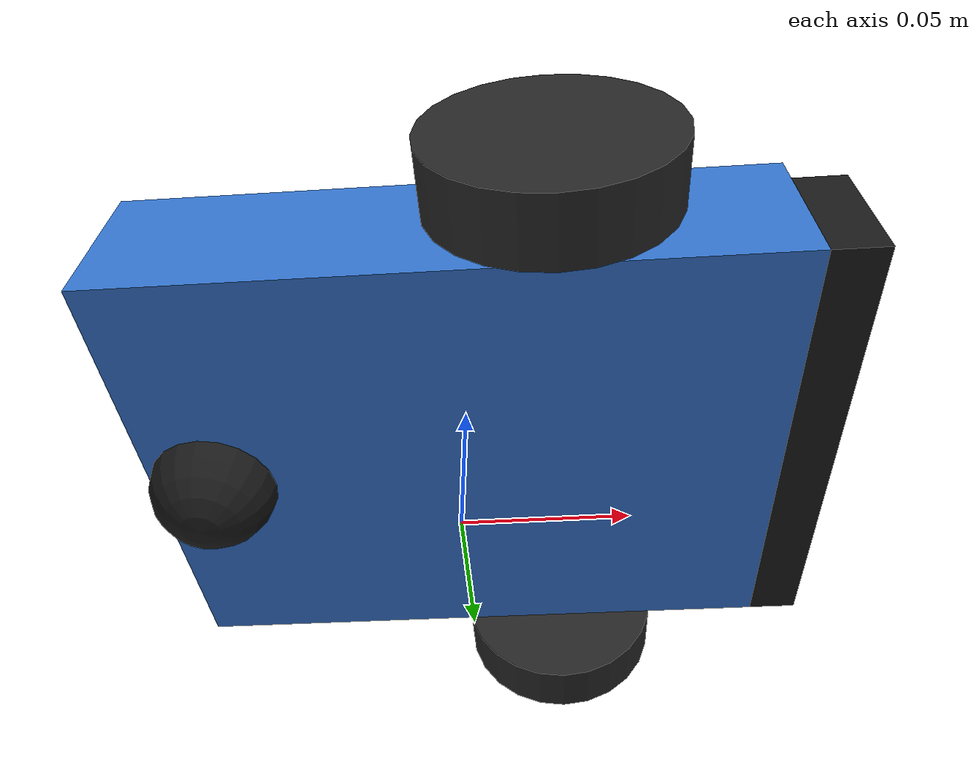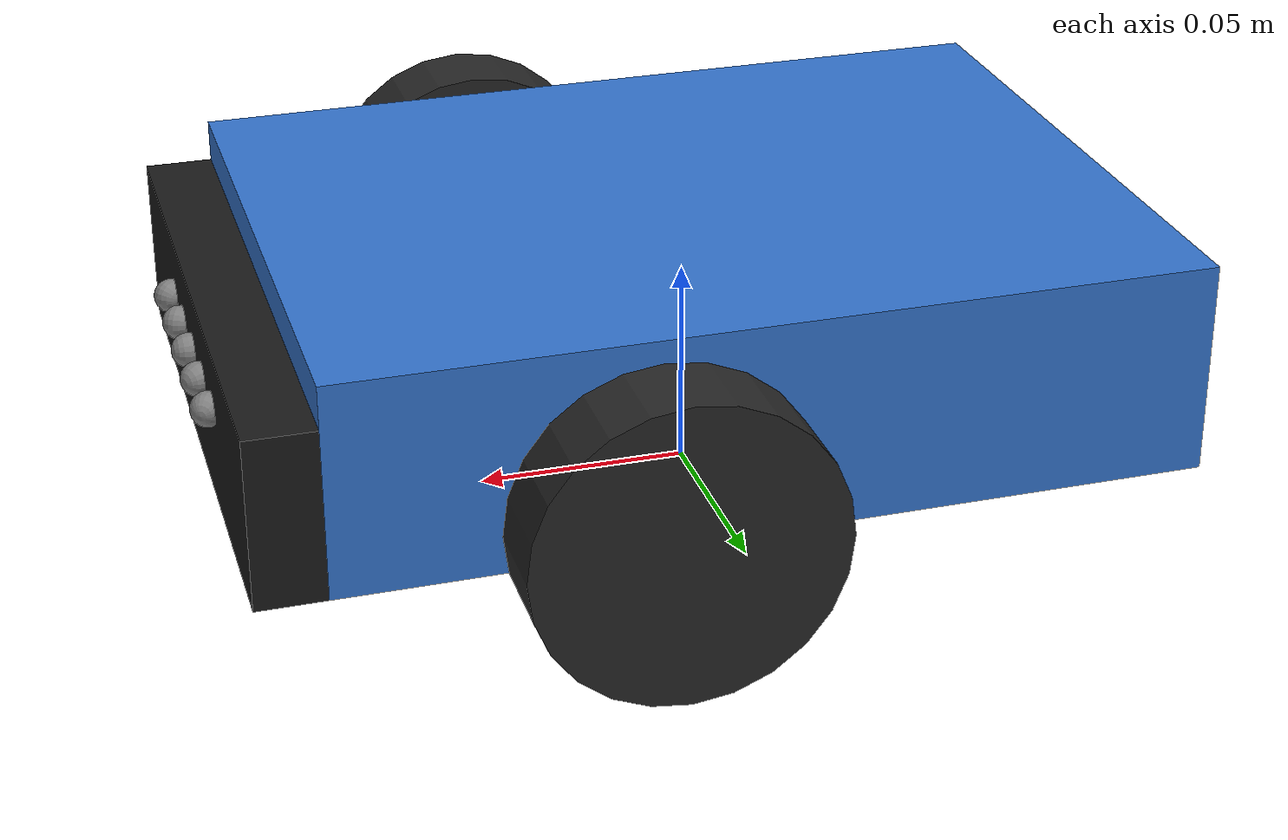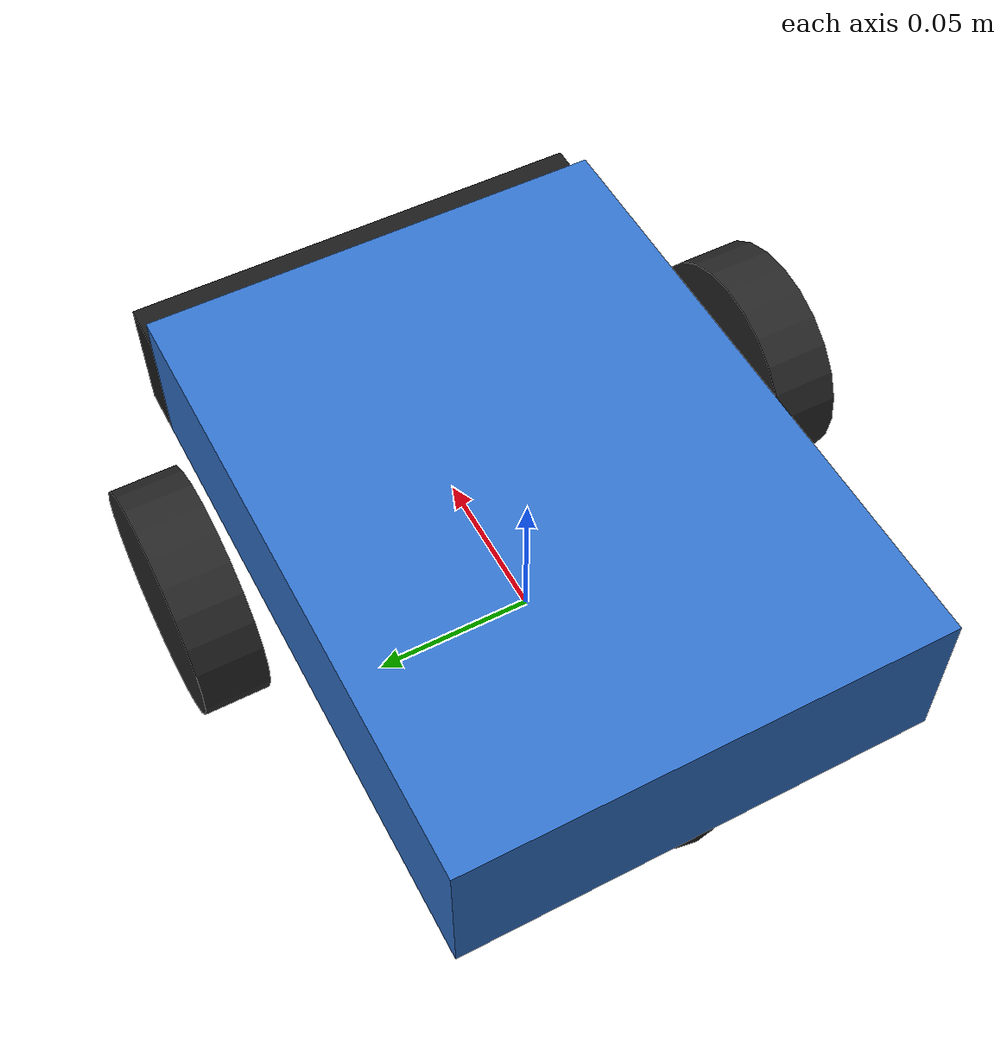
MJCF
<mujoco model="ramms_rover">
  <worldbody>
    <body name="chassis" pos="0 0 0.035">
      <freejoint name="root"/>
      <site name="imu" pos="0 0 0.01" size="0.005"/>

      <geom name="body" type="box" size="0.10 0.075 0.025" pos="0 0 0.01" mass="0.9" rgba="0.20 0.45 0.80 1"/>
      <geom name="bumper" type="box" size="0.008 0.075 0.02" pos="0.108 0 0.005" mass="0.05" rgba="0.10 0.10 0.10 1"/>
      <!-- Frictionless rear caster keeps the base level without resisting turns. -->
      <geom name="caster" type="sphere" size="0.02" pos="-0.08 0 -0.015" condim="1" mass="0.05" rgba="0.10 0.10 0.10 1"/>

      <!-- Contact volume for the bump sensor: covers the chassis above the caster's floor contact. -->
      <site name="bump" type="box" size="0.125 0.085 0.03" pos="0.005 0 0.01" rgba="1 0 0 0"/>

      <!-- Rangefinders measure along each site's +z axis: a fan from -60 to +60 degrees. -->
      <site name="range_m60" pos="0.117 -0.03 0.01" zaxis="0.5 -0.866 0" size="0.004"/>
      <site name="range_m30" pos="0.117 -0.015 0.01" zaxis="0.866 -0.5 0" size="0.004"/>
      <site name="range_0" pos="0.117 0 0.01" zaxis="1 0 0" size="0.004"/>
      <site name="range_p30" pos="0.117 0.015 0.01" zaxis="0.866 0.5 0" size="0.004"/>
      <site name="range_p60" pos="0.117 0.03 0.01" zaxis="0.5 0.866 0" size="0.004"/>

      <!-- Looks along +x (cameras view along their local -z). -->
      <camera name="front" pos="0.11 0 0.04" xyaxes="0 -1 0 0 0 1" fovy="70" resolution="64 48"/>

      <body name="wheel_left" pos="0.03 0.095 0">
        <joint name="wheel_left" type="hinge" axis="0 1 0" damping="0.0005"/>
        <geom type="cylinder" size="0.035 0.01" zaxis="0 1 0" friction="1.2 0.01 0.001" mass="0.05" rgba="0.15 0.15 0.15 1"/>
      </body>
      <body name="wheel_right" pos="0.03 -0.095 0">
        <joint name="wheel_right" type="hinge" axis="0 1 0" damping="0.0005"/>
        <geom type="cylinder" size="0.035 0.01" zaxis="0 1 0" friction="1.2 0.01 0.001" mass="0.05" rgba="0.15 0.15 0.15 1"/>
      </body>
    </body>
  </worldbody>

  <actuator>
    <velocity name="wheel_left" joint="wheel_left" kv="0.1" ctrlrange="-25 25" forcerange="-0.3 0.3"/>
    <velocity name="wheel_right" joint="wheel_right" kv="0.1" ctrlrange="-25 25" forcerange="-0.3 0.3"/>
  </actuator>

  <sensor>
    <rangefinder name="range_m60" site="range_m60"/>
    <rangefinder name="range_m30" site="range_m30"/>
    <rangefinder name="range_0" site="range_0"/>
    <rangefinder name="range_p30" site="range_p30"/>
    <rangefinder name="range_p60" site="range_p60"/>
    <accelerometer name="accel" site="imu"/>
    <gyro name="gyro" site="imu"/>
    <touch name="bump" site="bump"/>
    <jointvel name="wheel_left_vel" joint="wheel_left"/>
    <jointvel name="wheel_right_vel" joint="wheel_right"/>
  </sensor>
</mujoco>
